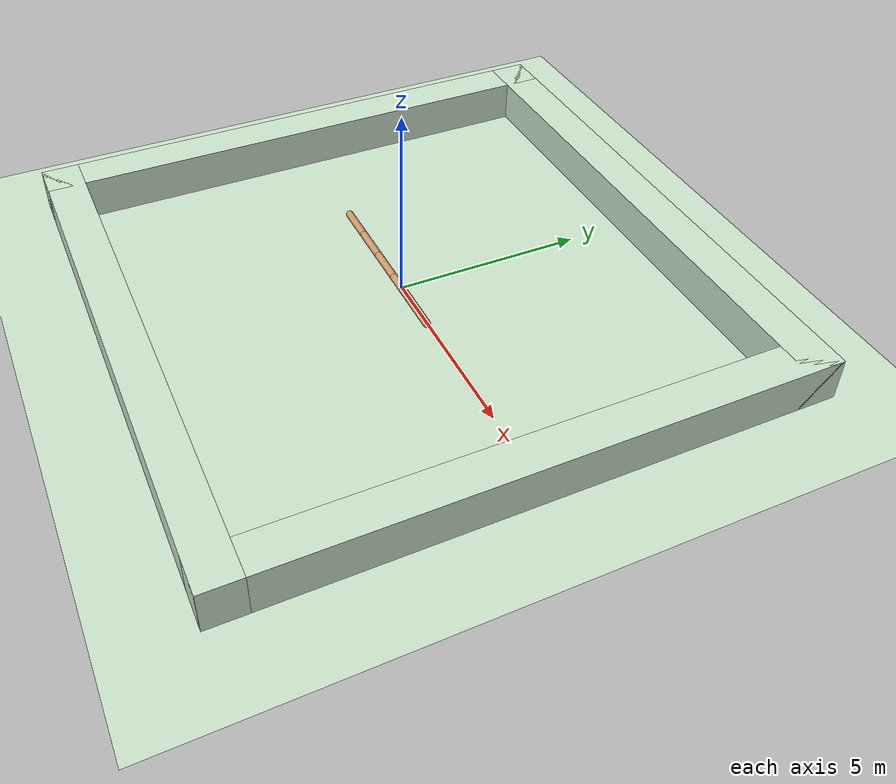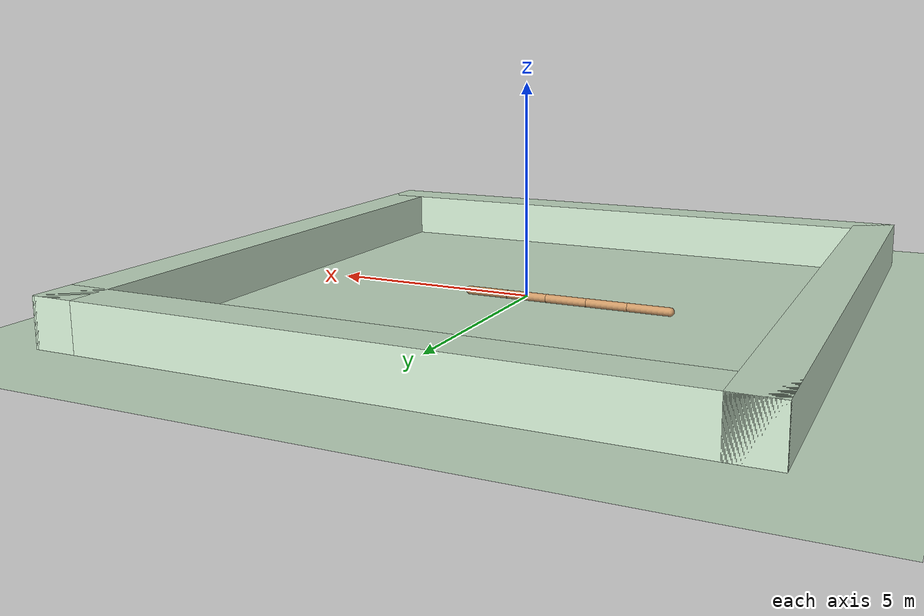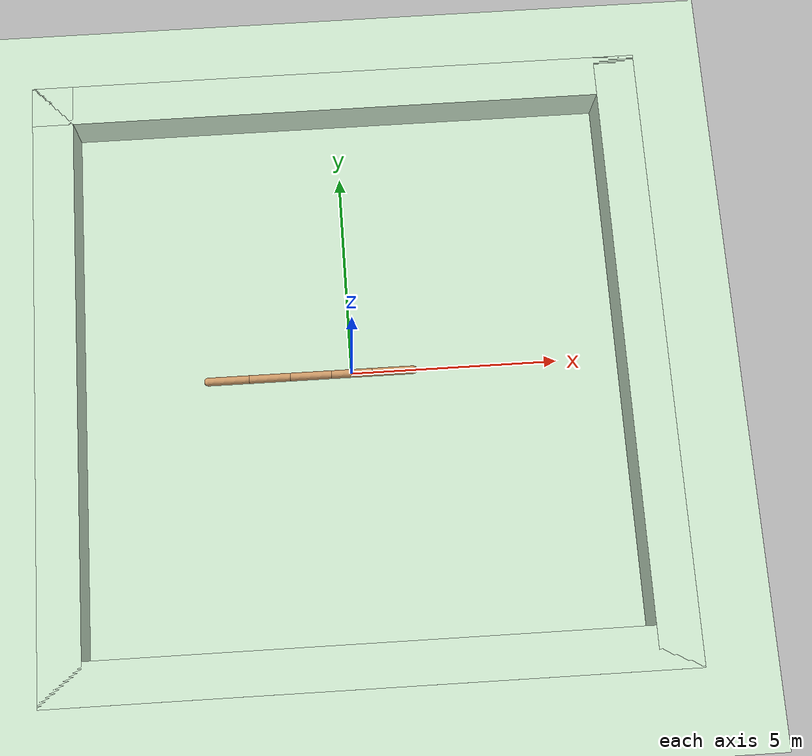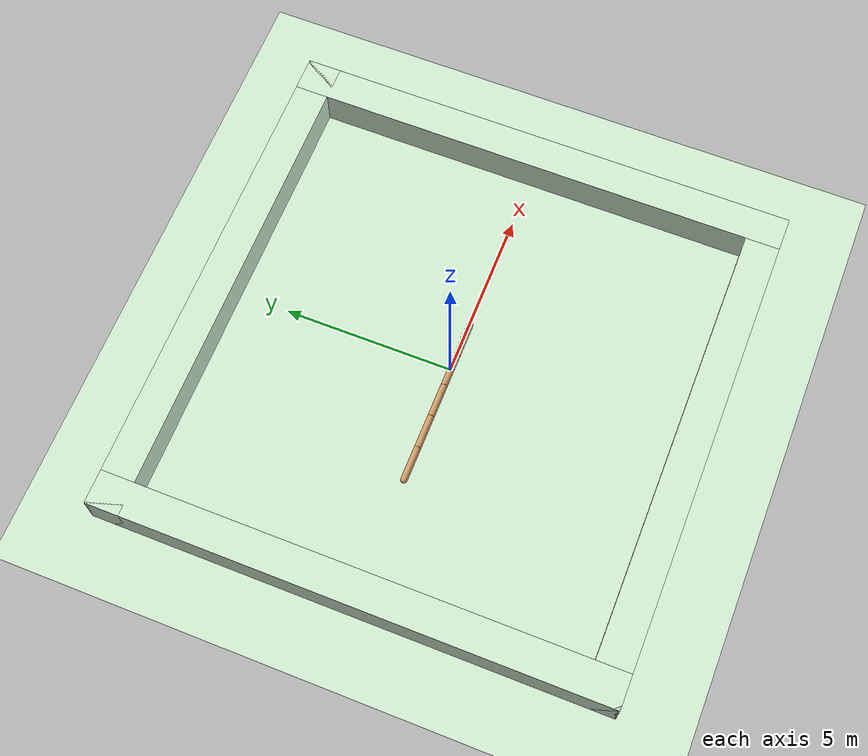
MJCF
<mujoco model="snake">
  <compiler angle="degree" coordinate="local" inertiafromgeom="true" />
  <custom>
    <numeric data="50" name="frame_skip" />
  </custom>
  <option collision="predefined" density="4000" integrator="Euler" iterations="1000" timestep="0.001" viscosity="0.1">
    <flag warmstart="disable" />
  </option>
  <default>
    <geom conaffinity="1" condim="1" contype="1" material="geom" rgba="0.8 0.6 .4 1" />

  </default>
  <asset>
    <texture builtin="gradient" height="100" rgb1="1 1 1" rgb2="0 0 0" type="skybox" width="100" />
    <texture builtin="flat" height="1278" mark="cross" markrgb="1 1 1" name="texgeom" random="0.01" rgb1="0.8 0.6 0.4" rgb2="0.8 0.6 0.4" type="cube" width="127" />
    <texture builtin="checker" height="100" name="texplane" rgb1="0 0 0" rgb2="0.8 0.8 0.8" type="2d" width="100" />
    <material name="MatPlane" reflectance="0.5" shininess="1" specular="1" texrepeat="30 30" texture="texplane" />
    <material name="geom" texture="texgeom" texuniform="true" />
  </asset>
  <worldbody>
    <light cutoff="100" diffuse="1 1 1" dir="-0 0 -1.3" directional="true" exponent="1" pos="0 0 1.3" specular=".1 .1 .1" />
    <geom conaffinity="1" condim="3" material="MatPlane" name="floor" pos="0 0 -0.1" rgba="0.8 0.9 0.8 1" size="40 40 0.1" type="plane" />

    <body name="torso" pos="0 0 0">
      <geom density="1000" fromto="1.5 0 0 0.5 0 0" name="torso" size="0.1" type="capsule" />
      <joint axis="1 0 0" name="slider1" pos="0 0 0" type="slide" />
      <joint axis="0 1 0" name="slider2" pos="0 0 0" type="slide" />
      <joint axis="0 0 1" name="rot" pos="0 0 0" type="hinge" />
      <body name="mid" pos="0.5 0 0">
        <geom density="1000" fromto="0 0 0 -1 0 0" name="mid" size="0.1" type="capsule" />
        <joint axis="0 0 1" limited="true" name="rot2" pos="0 0 0" range="-100 100" type="hinge" />
        <body name="back" pos="-1 0 0">
          <geom density="1000" fromto="0 0 0 -1 0 0" name="back" size="0.1" type="capsule" />
          <joint axis="0 0 1" limited="true" name="rot3" pos="0 0 0" range="-100 100" type="hinge" />
            <body name="back2" pos="-1 0 0">
                <geom density="1000" fromto="0 0 0 -1 0 0" name="back2" size="0.1" type="capsule" />
                <joint axis="0 0 1" limited="true" name="rot4" pos="0 0 0" range="-100 100" type="hinge" />
                <body name="back3" pos="-1 0 0">
                    <geom density="1000" fromto="0 0 0 -1 0 0" name="back3" size="0.1" type="capsule" />
                    <joint axis="0 0 1" limited="true" name="rot5" pos="0 0 0" range="-100 100" type="hinge" />
                </body>
            </body>
        </body>
      </body>
    </body>
  <geom conaffinity="1" condim="3" name="wall1" pos="0 -7 0" rgba="0.8 0.9 0.8 1" size="7.5 0.5 1" type="box" /><geom conaffinity="1" condim="3" name="wall2" pos="0 7 0" rgba="0.8 0.9 0.8 1" size="7.5 0.5 1" type="box" /><geom conaffinity="1" condim="3" name="wall3" pos="-7 0 0" rgba="0.8 0.9 0.8 1" size="0.5 7.5 1" type="box" /><geom conaffinity="1" condim="3" name="wall4" pos="7 0 0" rgba="0.8 0.9 0.8 1" size="0.5 7.5 1" type="box" /></worldbody>
  <actuator>
    <motor ctrllimited="true" ctrlrange="-50 50" joint="rot2" />
    <motor ctrllimited="true" ctrlrange="-50 50" joint="rot3" />
    <motor ctrllimited="true" ctrlrange="-50 50" joint="rot4" />
    <motor ctrllimited="true" ctrlrange="-50 50" joint="rot5" />
  </actuator>
</mujoco>
